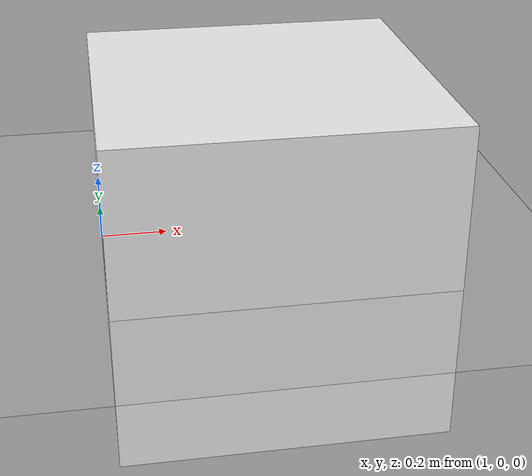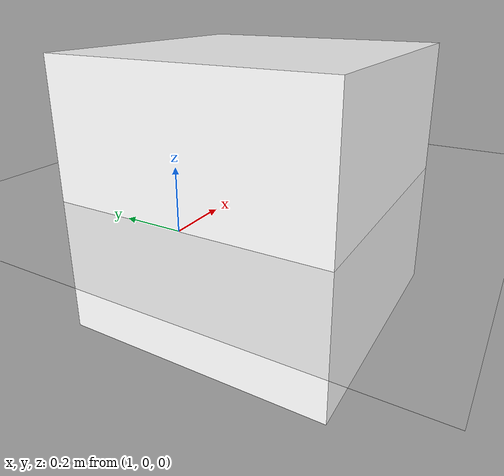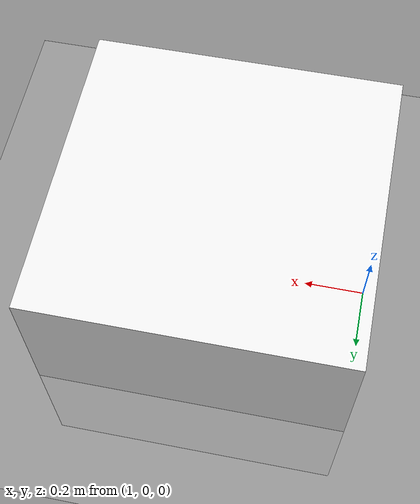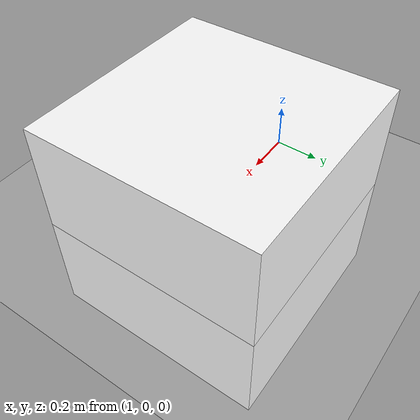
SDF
<?xml version="1.0" ?>
<sdf version="1.4">
  <world name="default">
    <physics type='ode'>
      <gravity>0 0 -9.81</gravity>
      <!-- max step size has to be a multiple of the desired task rate-->
      <max_step_size>0.001</max_step_size>
      <real_time_factor>1</real_time_factor>
    </physics>
    <!-- A global light source -->
    <include>
      <uri>model://sun</uri>
    </include>
    <!-- A ground plane -->
    <include>
      <uri>model://ground_plane</uri>
    </include>

<!--arco markers-->

<include>
<uri>model://aruco_visual_marker_1</uri>

     <pose>1.5 0 0 0 0 0</pose>
</include>

  </world>
</sdf>

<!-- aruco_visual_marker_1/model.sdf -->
<sdf version='1.5'>
  <model name='aruco_visual_marker_1'>

    <link name='marker'>
      <pose frame=''>0 0 0 0 0 0</pose>
      <visual name='visual'>
        <geometry>
          <box>
            <size>1 1 1</size>
          </box>
        </geometry>
        <material>
          <script>
            <uri>model://aruco_visual_marker_1/materials/scripts</uri>
            <uri>model://aruco_visual_marker_1/materials/textures</uri>
            <name>ArucoVisualMarker1/Marker</name>
          </script>
          <ambient>1 1 1 1</ambient>
          <diffuse>1 1 1 1</diffuse>
          <specular>0 0 0 1</specular>
          <emissive>1 1 1 0</emissive>
          <shader type='vertex'>
            <normal_map>__default__</normal_map>
          </shader>
        </material>
        <pose frame=''>0 0 0 0 -0 0</pose>
        <cast_shadows>1</cast_shadows>
        <transparency>0</transparency>
      </visual>
      <collision name='collision'>
        <laser_retro>0</laser_retro>
        <max_contacts>10</max_contacts>
        <pose frame=''>0 0 0 0 -0 0</pose>
        <geometry>
          <box>
            <size>1 1 1</size>
          </box>
        </geometry>
      </collision>
    </link>

    <static>1</static>
    <allow_auto_disable>1</allow_auto_disable>

  </model>
</sdf>
